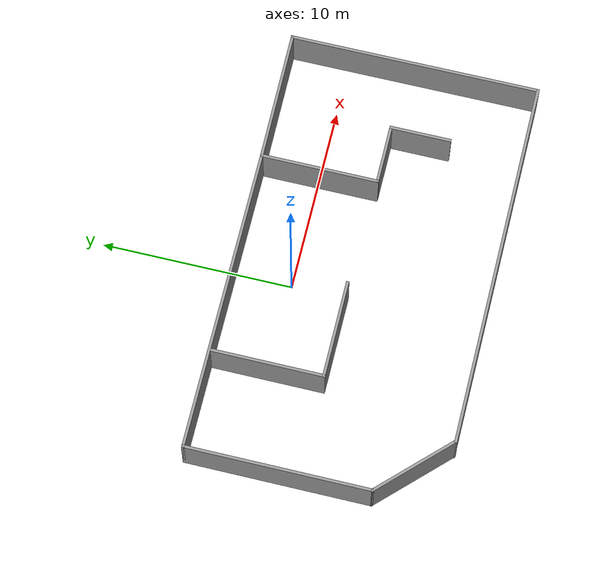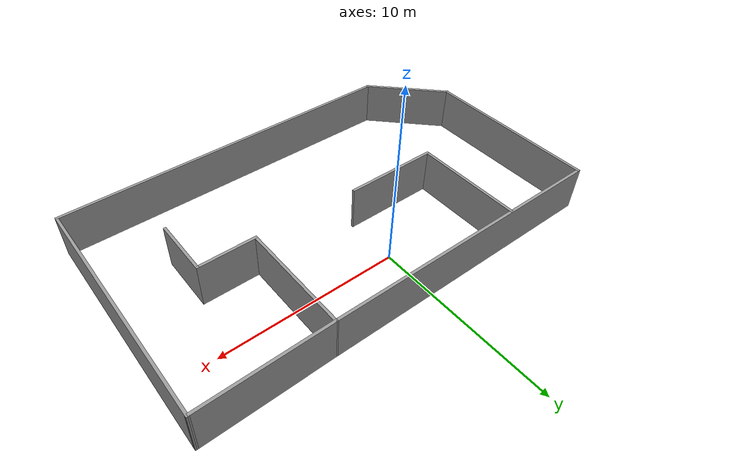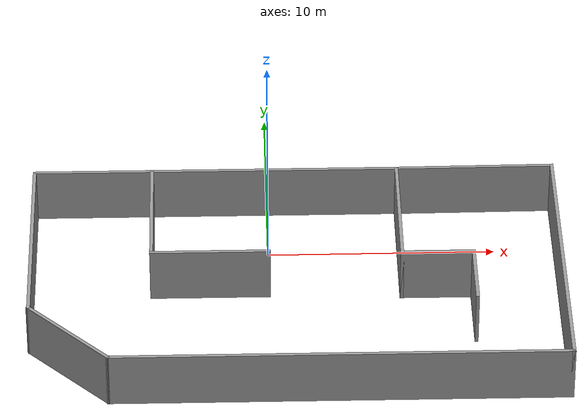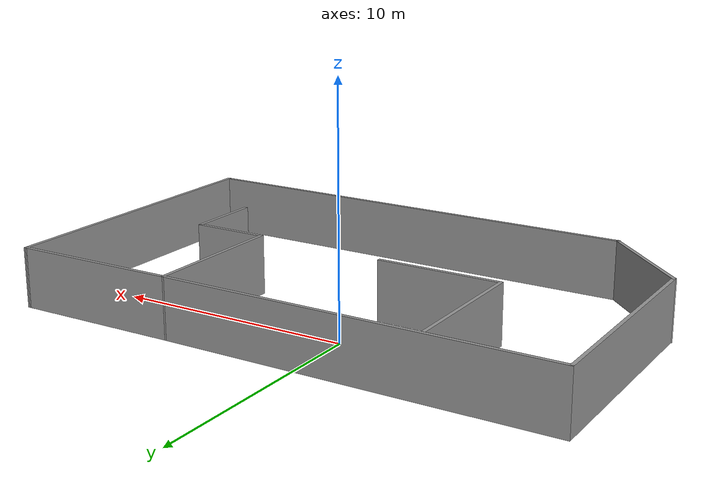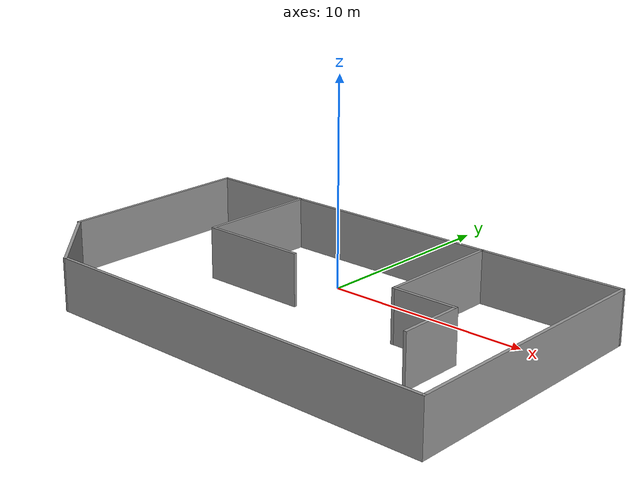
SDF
<?xml version='1.0'?>
<sdf version='1.7'>
  <model name='map'>
    <pose>1.18371 -3.50456 0 0 -0 0</pose>
    <link name='Wall_0'>
      <collision name='Wall_0_Collision'>
        <geometry>
          <box>
            <size>16.25 0.15 2.5</size>
          </box>
        </geometry>
        <pose>0 0 1.25 0 -0 0</pose>
      </collision>
      <visual name='Wall_0_Visual'>
        <pose>0 0 1.25 0 -0 0</pose>
        <geometry>
          <box>
            <size>16.25 0.15 2.5</size>
          </box>
        </geometry>
        <material>
          <script>
            <uri>file://media/materials/scripts/gazebo.material</uri>
            <name>Gazebo/Grey</name>
          </script>
          <ambient>1 1 1 1</ambient>
        </material>
        <meta>
          <layer>0</layer>
        </meta>
      </visual>
      <pose>-3.44958 6.49462 0 0 -0 3.14159</pose>
    </link>
    <link name='Wall_1'>
      <collision name='Wall_1_Collision'>
        <geometry>
          <box>
            <size>9.75 0.15 2.5</size>
          </box>
        </geometry>
        <pose>0 0 1.25 0 -0 0</pose>
      </collision>
      <visual name='Wall_1_Visual'>
        <pose>0 0 1.25 0 -0 0</pose>
        <geometry>
          <box>
            <size>9.75 0.15 2.5</size>
          </box>
        </geometry>
        <material>
          <script>
            <uri>file://media/materials/scripts/gazebo.material</uri>
            <name>Gazebo/Grey</name>
          </script>
          <ambient>1 1 1 1</ambient>
        </material>
        <meta>
          <layer>0</layer>
        </meta>
      </visual>
      <pose>-11.4996 1.69462 0 0 -0 -1.5708</pose>
    </link>
    <link name='Wall_11'>
      <collision name='Wall_11_Collision'>
        <geometry>
          <box>
            <size>6 0.15 2.5</size>
          </box>
        </geometry>
        <pose>0 0 1.25 0 -0 0</pose>
      </collision>
      <visual name='Wall_11_Visual'>
        <pose>0 0 1.25 0 -0 0</pose>
        <geometry>
          <box>
            <size>6 0.15 2.5</size>
          </box>
        </geometry>
        <material>
          <script>
            <uri>file://media/materials/scripts/gazebo.material</uri>
            <name>Gazebo/Grey</name>
          </script>
          <ambient>1 1 1 1</ambient>
        </material>
        <meta>
          <layer>0</layer>
        </meta>
      </visual>
      <pose>-6.28618 3.5231 0 0 -0 -1.5708</pose>
    </link>
    <link name='Wall_12'>
      <collision name='Wall_12_Collision'>
        <geometry>
          <box>
            <size>5.25 0.15 2.5</size>
          </box>
        </geometry>
        <pose>0 0 1.25 0 -0 0</pose>
      </collision>
      <visual name='Wall_12_Visual'>
        <pose>0 0 1.25 0 -0 0</pose>
        <geometry>
          <box>
            <size>5.25 0.15 2.5</size>
          </box>
        </geometry>
        <material>
          <script>
            <uri>file://media/materials/scripts/gazebo.material</uri>
            <name>Gazebo/Grey</name>
          </script>
          <ambient>1 1 1 1</ambient>
        </material>
        <meta>
          <layer>0</layer>
        </meta>
      </visual>
      <pose>-3.73618 0.598097 0 0 -0 0</pose>
    </link>
    <link name='Wall_3'>
      <collision name='Wall_3_Collision'>
        <geometry>
          <box>
            <size>5 0.15 2.5</size>
          </box>
        </geometry>
        <pose>0 0 1.25 0 -0 0</pose>
      </collision>
      <visual name='Wall_3_Visual'>
        <pose>0 0 1.25 0 -0 0</pose>
        <geometry>
          <box>
            <size>5 0.15 2.5</size>
          </box>
        </geometry>
        <material>
          <script>
            <uri>file://media/materials/scripts/gazebo.material</uri>
            <name>Gazebo/Grey</name>
          </script>
          <ambient>1 1 1 1</ambient>
        </material>
        <meta>
          <layer>0</layer>
        </meta>
      </visual>
      <pose>-9.78485 -4.82011 0 0 -0 -0.785398</pose>
    </link>
    <link name='Wall_4'>
      <collision name='Wall_4_Collision'>
        <geometry>
          <box>
            <size>19.75 0.15 2.5</size>
          </box>
        </geometry>
        <pose>0 0 1.25 0 -0 0</pose>
      </collision>
      <visual name='Wall_4_Visual'>
        <pose>0 0 1.25 0 -0 0</pose>
        <geometry>
          <box>
            <size>19.75 0.15 2.5</size>
          </box>
        </geometry>
        <material>
          <script>
            <uri>file://media/materials/scripts/gazebo.material</uri>
            <name>Gazebo/Grey</name>
          </script>
          <ambient>1 1 1 1</ambient>
        </material>
        <meta>
          <layer>0</layer>
        </meta>
      </visual>
      <pose>1.72989 -6.53485 0 0 -0 0</pose>
    </link>
    <link name='Wall_5'>
      <collision name='Wall_5_Collision'>
        <geometry>
          <box>
            <size>13.25 0.15 2.5</size>
          </box>
        </geometry>
        <pose>0 0 1.25 0 -0 0</pose>
      </collision>
      <visual name='Wall_5_Visual'>
        <pose>0 0 1.25 0 -0 0</pose>
        <geometry>
          <box>
            <size>13.25 0.15 2.5</size>
          </box>
        </geometry>
        <material>
          <script>
            <uri>file://media/materials/scripts/gazebo.material</uri>
            <name>Gazebo/Grey</name>
          </script>
          <ambient>1 1 1 1</ambient>
        </material>
        <meta>
          <layer>0</layer>
        </meta>
      </visual>
      <pose>11.5299 0.015153 0 0 -0 1.5708</pose>
    </link>
    <link name='Wall_6'>
      <collision name='Wall_6_Collision'>
        <geometry>
          <box>
            <size>7.07983 0.15 2.5</size>
          </box>
        </geometry>
        <pose>0 0 1.25 0 -0 0</pose>
      </collision>
      <visual name='Wall_6_Visual'>
        <pose>0 0 1.25 0 -0 0</pose>
        <geometry>
          <box>
            <size>7.07983 0.15 2.5</size>
          </box>
        </geometry>
        <material>
          <script>
            <uri>file://media/materials/scripts/gazebo.material</uri>
            <name>Gazebo/Grey</name>
          </script>
          <ambient>1 1 1 1</ambient>
        </material>
        <meta>
          <layer>0</layer>
        </meta>
      </visual>
      <pose>8.06515 6.52989 0 0 -0 -3.13141</pose>
    </link>
    <link name='Wall_7'>
      <collision name='Wall_7_Collision'>
        <geometry>
          <box>
            <size>6.25 0.15 2.5</size>
          </box>
        </geometry>
        <pose>0 0 1.25 0 -0 0</pose>
      </collision>
      <visual name='Wall_7_Visual'>
        <pose>0 0 1.25 0 -0 0</pose>
        <geometry>
          <box>
            <size>6.25 0.15 2.5</size>
          </box>
        </geometry>
        <material>
          <script>
            <uri>file://media/materials/scripts/gazebo.material</uri>
            <name>Gazebo/Grey</name>
          </script>
          <ambient>1 1 1 1</ambient>
        </material>
        <meta>
          <layer>0</layer>
        </meta>
      </visual>
      <pose>4.60042 3.44462 0 0 -0 -1.5708</pose>
    </link>
    <link name='Wall_8'>
      <collision name='Wall_8_Collision'>
        <geometry>
          <box>
            <size>3.25 0.15 2.5</size>
          </box>
        </geometry>
        <pose>0 0 1.25 0 -0 0</pose>
      </collision>
      <visual name='Wall_8_Visual'>
        <pose>0 0 1.25 0 -0 0</pose>
        <geometry>
          <box>
            <size>3.25 0.15 2.5</size>
          </box>
        </geometry>
        <material>
          <script>
            <uri>file://media/materials/scripts/gazebo.material</uri>
            <name>Gazebo/Grey</name>
          </script>
          <ambient>1 1 1 1</ambient>
        </material>
        <meta>
          <layer>0</layer>
        </meta>
      </visual>
      <pose>6.15042 0.394621 0 0 -0 0</pose>
    </link>
    <link name='Wall_9'>
      <collision name='Wall_9_Collision'>
        <geometry>
          <box>
            <size>3.25 0.15 2.5</size>
          </box>
        </geometry>
        <pose>0 0 1.25 0 -0 0</pose>
      </collision>
      <visual name='Wall_9_Visual'>
        <pose>0 0 1.25 0 -0 0</pose>
        <geometry>
          <box>
            <size>3.25 0.15 2.5</size>
          </box>
        </geometry>
        <material>
          <script>
            <uri>file://media/materials/scripts/gazebo.material</uri>
            <name>Gazebo/Grey</name>
          </script>
          <ambient>1 1 1 1</ambient>
        </material>
        <meta>
          <layer>0</layer>
        </meta>
      </visual>
      <pose>7.70042 -1.15538 0 0 -0 -1.5708</pose>
    </link>
    <static>1</static>
  </model>
</sdf>
